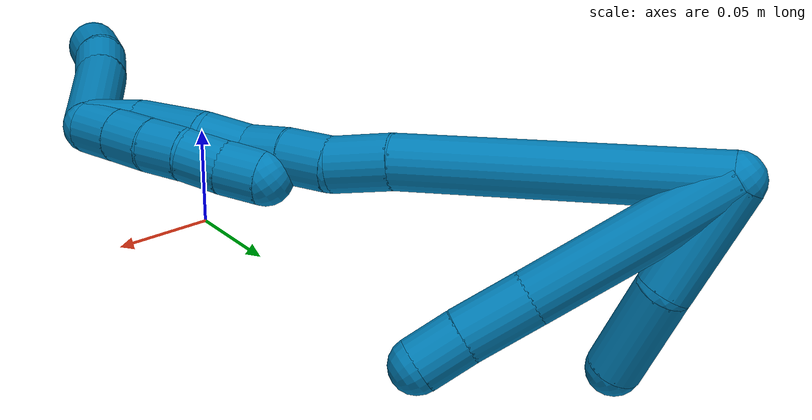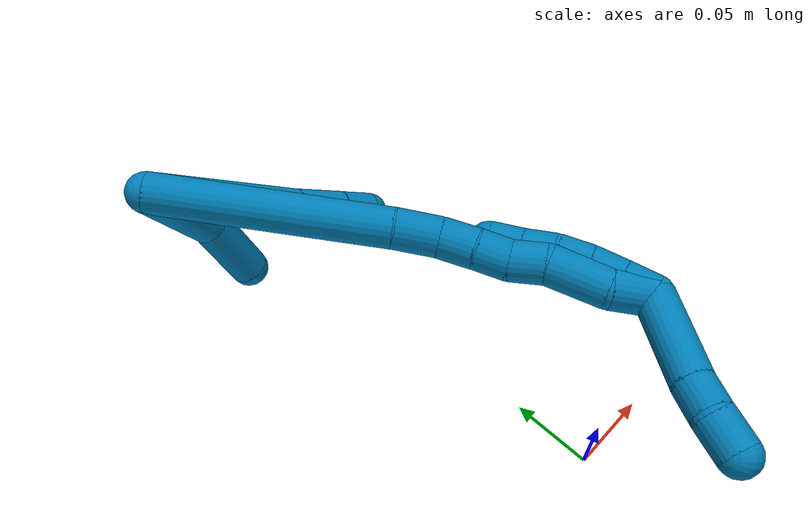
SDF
<sdf version="1.7">
 <world name="default">
  <model name="9">
   <static>0</static>
   <link name="9">
    <collision name="collision-cylinder-e_1_2_8">
     <pose>-0.000289 -0.00567 -0.047494 3.02277 -0.006038 -0.101419</pose>
     <geometry><cylinder><radius>0.0125</radius><length>0.095664</length></cylinder></geometry>
     <surface>
      <friction><ode><mu>1.16</mu><mu2>1.16</mu2><slip1>0</slip1><slip2>0</slip2></ode></friction>
      <contact><ode><kp>1e+06</kp><kd>1</kd><max_vel>0</max_vel><min_depth>0.001</min_depth></ode></contact>
     </surface>
    </collision>
    <visual name="visual-cylinder-e_1_2_8">
     <pose>-0.000289 -0.00567 -0.047494 3.02277 -0.006038 -0.101419</pose>
     <geometry><cylinder><radius>0.0125</radius><length>0.095664</length></cylinder></geometry>
     <material><ambient>0 0.490196 0.709804 1</ambient></material>
    </visual>
    <collision name="collision-cylinder-e_2_8_9">
     <pose>0.000106 -0.012863 -0.110979 3.04661 0.042501 0.84104</pose>
     <geometry><cylinder><radius>0.0125</radius><length>0.032155</length></cylinder></geometry>
     <surface>
      <friction><ode><mu>1.16</mu><mu2>1.16</mu2><slip1>0</slip1><slip2>0</slip2></ode></friction>
      <contact><ode><kp>1e+06</kp><kd>1</kd><max_vel>0</max_vel><min_depth>0.001</min_depth></ode></contact>
     </surface>
    </collision>
    <visual name="visual-cylinder-e_2_8_9">
     <pose>0.000106 -0.012863 -0.110979 3.04661 0.042501 0.84104</pose>
     <geometry><cylinder><radius>0.0125</radius><length>0.032155</length></cylinder></geometry>
     <material><ambient>0 0.490196 0.709804 1</ambient></material>
    </visual>
    <collision name="collision-cylinder-e_3_9_6">
     <pose>0.001056 -0.014907 -0.138044 3.09463 0.024147 0.949707</pose>
     <geometry><cylinder><radius>0.0125</radius><length>0.02218</length></cylinder></geometry>
     <surface>
      <friction><ode><mu>1.16</mu><mu2>1.16</mu2><slip1>0</slip1><slip2>0</slip2></ode></friction>
      <contact><ode><kp>1e+06</kp><kd>1</kd><max_vel>0</max_vel><min_depth>0.001</min_depth></ode></contact>
     </surface>
    </collision>
    <visual name="visual-cylinder-e_3_9_6">
     <pose>0.001056 -0.014907 -0.138044 3.09463 0.024147 0.949707</pose>
     <geometry><cylinder><radius>0.0125</radius><length>0.02218</length></cylinder></geometry>
     <material><ambient>0 0.490196 0.709804 1</ambient></material>
    </visual>
    <collision name="collision-cylinder-e_1_2_10">
     <pose>-0.011218 0.00474 -0.024401 -2.94974 -0.423937 2.30066</pose>
     <geometry><cylinder><radius>0.0125</radius><length>0.054542</length></cylinder></geometry>
     <surface>
      <friction><ode><mu>1.16</mu><mu2>1.16</mu2><slip1>0</slip1><slip2>0</slip2></ode></friction>
      <contact><ode><kp>1e+06</kp><kd>1</kd><max_vel>0</max_vel><min_depth>0.001</min_depth></ode></contact>
     </surface>
    </collision>
    <visual name="visual-cylinder-e_1_2_10">
     <pose>-0.011218 0.00474 -0.024401 -2.94974 -0.423937 2.30066</pose>
     <geometry><cylinder><radius>0.0125</radius><length>0.054542</length></cylinder></geometry>
     <material><ambient>0 0.490196 0.709804 1</ambient></material>
    </visual>
    <collision name="collision-cylinder-e_2_10_5">
     <pose>-0.037095 0.0101 -0.066161 -3.10588 -0.700934 3.04396</pose>
     <geometry><cylinder><radius>0.0125</radius><length>0.045458</length></cylinder></geometry>
     <surface>
      <friction><ode><mu>1.16</mu><mu2>1.16</mu2><slip1>0</slip1><slip2>0</slip2></ode></friction>
      <contact><ode><kp>1e+06</kp><kd>1</kd><max_vel>0</max_vel><min_depth>0.001</min_depth></ode></contact>
     </surface>
    </collision>
    <visual name="visual-cylinder-e_2_10_5">
     <pose>-0.037095 0.0101 -0.066161 -3.10588 -0.700934 3.04396</pose>
     <geometry><cylinder><radius>0.0125</radius><length>0.045458</length></cylinder></geometry>
     <material><ambient>0 0.490196 0.709804 1</ambient></material>
    </visual>
    <collision name="collision-cylinder-e_1_2_11">
     <pose>0.009264 -0.0467 -0.054379 2.43202 0.128533 0.343997</pose>
     <geometry><cylinder><radius>0.0125</radius><length>0.144552</length></cylinder></geometry>
     <surface>
      <friction><ode><mu>1.16</mu><mu2>1.16</mu2><slip1>0</slip1><slip2>0</slip2></ode></friction>
      <contact><ode><kp>1e+06</kp><kd>1</kd><max_vel>0</max_vel><min_depth>0.001</min_depth></ode></contact>
     </surface>
    </collision>
    <visual name="visual-cylinder-e_1_2_11">
     <pose>0.009264 -0.0467 -0.054379 2.43202 0.128533 0.343997</pose>
     <geometry><cylinder><radius>0.0125</radius><length>0.144552</length></cylinder></geometry>
     <material><ambient>0 0.490196 0.709804 1</ambient></material>
    </visual>
    <collision name="collision-cylinder-e_2_11_12">
     <pose>0.019298 -0.10169 -0.120006 2.50652 0.054987 0.166963</pose>
     <geometry><cylinder><radius>0.0125</radius><length>0.027988</length></cylinder></geometry>
     <surface>
      <friction><ode><mu>1.16</mu><mu2>1.16</mu2><slip1>0</slip1><slip2>0</slip2></ode></friction>
      <contact><ode><kp>1e+06</kp><kd>1</kd><max_vel>0</max_vel><min_depth>0.001</min_depth></ode></contact>
     </surface>
    </collision>
    <visual name="visual-cylinder-e_2_11_12">
     <pose>0.019298 -0.10169 -0.120006 2.50652 0.054987 0.166963</pose>
     <geometry><cylinder><radius>0.0125</radius><length>0.027988</length></cylinder></geometry>
     <material><ambient>0 0.490196 0.709804 1</ambient></material>
    </visual>
    <collision name="collision-cylinder-e_3_12_13">
     <pose>0.020229 -0.118799 -0.138113 2.23167 0.014514 0.029667</pose>
     <geometry><cylinder><radius>0.0125</radius><length>0.022347</length></cylinder></geometry>
     <surface>
      <friction><ode><mu>1.16</mu><mu2>1.16</mu2><slip1>0</slip1><slip2>0</slip2></ode></friction>
      <contact><ode><kp>1e+06</kp><kd>1</kd><max_vel>0</max_vel><min_depth>0.001</min_depth></ode></contact>
     </surface>
    </collision>
    <visual name="visual-cylinder-e_3_12_13">
     <pose>0.020229 -0.118799 -0.138113 2.23167 0.014514 0.029667</pose>
     <geometry><cylinder><radius>0.0125</radius><length>0.022347</length></cylinder></geometry>
     <material><ambient>0 0.490196 0.709804 1</ambient></material>
    </visual>
    <collision name="collision-cylinder-e_4_13_14">
     <pose>0.019977 -0.135048 -0.151888 2.32053 -0.04075 -0.093565</pose>
     <geometry><cylinder><radius>0.0125</radius><length>0.020319</length></cylinder></geometry>
     <surface>
      <friction><ode><mu>1.16</mu><mu2>1.16</mu2><slip1>0</slip1><slip2>0</slip2></ode></friction>
      <contact><ode><kp>1e+06</kp><kd>1</kd><max_vel>0</max_vel><min_depth>0.001</min_depth></ode></contact>
     </surface>
    </collision>
    <visual name="visual-cylinder-e_4_13_14">
     <pose>0.019977 -0.135048 -0.151888 2.32053 -0.04075 -0.093565</pose>
     <geometry><cylinder><radius>0.0125</radius><length>0.020319</length></cylinder></geometry>
     <material><ambient>0 0.490196 0.709804 1</ambient></material>
    </visual>
    <collision name="collision-cylinder-e_5_14_15">
     <pose>0.022117 -0.150969 -0.165421 2.2327 0.232939 0.470113</pose>
     <geometry><cylinder><radius>0.0125</radius><length>0.022126</length></cylinder></geometry>
     <surface>
      <friction><ode><mu>1.16</mu><mu2>1.16</mu2><slip1>0</slip1><slip2>0</slip2></ode></friction>
      <contact><ode><kp>1e+06</kp><kd>1</kd><max_vel>0</max_vel><min_depth>0.001</min_depth></ode></contact>
     </surface>
    </collision>
    <visual name="visual-cylinder-e_5_14_15">
     <pose>0.022117 -0.150969 -0.165421 2.2327 0.232939 0.470113</pose>
     <geometry><cylinder><radius>0.0125</radius><length>0.022126</length></cylinder></geometry>
     <material><ambient>0 0.490196 0.709804 1</ambient></material>
    </visual>
    <collision name="collision-cylinder-e_6_15_16">
     <pose>0.023579 -0.174107 -0.183059 2.21589 -0.059492 -0.119116</pose>
     <geometry><cylinder><radius>0.0125</radius><length>0.036727</length></cylinder></geometry>
     <surface>
      <friction><ode><mu>1.16</mu><mu2>1.16</mu2><slip1>0</slip1><slip2>0</slip2></ode></friction>
      <contact><ode><kp>1e+06</kp><kd>1</kd><max_vel>0</max_vel><min_depth>0.001</min_depth></ode></contact>
     </surface>
    </collision>
    <visual name="visual-cylinder-e_6_15_16">
     <pose>0.023579 -0.174107 -0.183059 2.21589 -0.059492 -0.119116</pose>
     <geometry><cylinder><radius>0.0125</radius><length>0.036727</length></cylinder></geometry>
     <material><ambient>0 0.490196 0.709804 1</ambient></material>
    </visual>
    <collision name="collision-cylinder-e_7_16_1">
     <pose>0.023892 -0.19691 -0.204068 2.4568 0.108526 0.30245</pose>
     <geometry><cylinder><radius>0.0125</radius><length>0.025941</length></cylinder></geometry>
     <surface>
      <friction><ode><mu>1.16</mu><mu2>1.16</mu2><slip1>0</slip1><slip2>0</slip2></ode></friction>
      <contact><ode><kp>1e+06</kp><kd>1</kd><max_vel>0</max_vel><min_depth>0.001</min_depth></ode></contact>
     </surface>
    </collision>
    <visual name="visual-cylinder-e_7_16_1">
     <pose>0.023892 -0.19691 -0.204068 2.4568 0.108526 0.30245</pose>
     <geometry><cylinder><radius>0.0125</radius><length>0.025941</length></cylinder></geometry>
     <material><ambient>0 0.490196 0.709804 1</ambient></material>
    </visual>
    <collision name="collision-cylinder-e_1_1_17">
     <pose>0.011007 -0.228651 -0.208584 1.34284 -0.533192 -0.427364</pose>
     <geometry><cylinder><radius>0.0125</radius><length>0.056229</length></cylinder></geometry>
     <surface>
      <friction><ode><mu>1.16</mu><mu2>1.16</mu2><slip1>0</slip1><slip2>0</slip2></ode></friction>
      <contact><ode><kp>1e+06</kp><kd>1</kd><max_vel>0</max_vel><min_depth>0.001</min_depth></ode></contact>
     </surface>
    </collision>
    <visual name="visual-cylinder-e_1_1_17">
     <pose>0.011007 -0.228651 -0.208584 1.34284 -0.533192 -0.427364</pose>
     <geometry><cylinder><radius>0.0125</radius><length>0.056229</length></cylinder></geometry>
     <material><ambient>0 0.490196 0.709804 1</ambient></material>
    </visual>
    <collision name="collision-cylinder-e_2_17_18">
     <pose>-0.007551 -0.261436 -0.201478 1.39498 -0.42852 -0.360736</pose>
     <geometry><cylinder><radius>0.0125</radius><length>0.020543</length></cylinder></geometry>
     <surface>
      <friction><ode><mu>1.16</mu><mu2>1.16</mu2><slip1>0</slip1><slip2>0</slip2></ode></friction>
      <contact><ode><kp>1e+06</kp><kd>1</kd><max_vel>0</max_vel><min_depth>0.001</min_depth></ode></contact>
     </surface>
    </collision>
    <visual name="visual-cylinder-e_2_17_18">
     <pose>-0.007551 -0.261436 -0.201478 1.39498 -0.42852 -0.360736</pose>
     <geometry><cylinder><radius>0.0125</radius><length>0.020543</length></cylinder></geometry>
     <material><ambient>0 0.490196 0.709804 1</ambient></material>
    </visual>
    <collision name="collision-cylinder-e_3_18_4">
     <pose>-0.017455 -0.280752 -0.200719 1.65708 -0.506582 -0.550111</pose>
     <geometry><cylinder><radius>0.0125</radius><length>0.023228</length></cylinder></geometry>
     <surface>
      <friction><ode><mu>1.16</mu><mu2>1.16</mu2><slip1>0</slip1><slip2>0</slip2></ode></friction>
      <contact><ode><kp>1e+06</kp><kd>1</kd><max_vel>0</max_vel><min_depth>0.001</min_depth></ode></contact>
     </surface>
    </collision>
    <visual name="visual-cylinder-e_3_18_4">
     <pose>-0.017455 -0.280752 -0.200719 1.65708 -0.506582 -0.550111</pose>
     <geometry><cylinder><radius>0.0125</radius><length>0.023228</length></cylinder></geometry>
     <material><ambient>0 0.490196 0.709804 1</ambient></material>
    </visual>
    <collision name="collision-cylinder-e_1_1_19">
     <pose>0.026293 -0.196564 -0.208886 -1.02452 0.099771 -0.056135</pose>
     <geometry><cylinder><radius>0.0125</radius><length>0.02</length></cylinder></geometry>
     <surface>
      <friction><ode><mu>1.16</mu><mu2>1.16</mu2><slip1>0</slip1><slip2>0</slip2></ode></friction>
      <contact><ode><kp>1e+06</kp><kd>1</kd><max_vel>0</max_vel><min_depth>0.001</min_depth></ode></contact>
     </surface>
    </collision>
    <visual name="visual-cylinder-e_1_1_19">
     <pose>0.026293 -0.196564 -0.208886 -1.02452 0.099771 -0.056135</pose>
     <geometry><cylinder><radius>0.0125</radius><length>0.02</length></cylinder></geometry>
     <material><ambient>0 0.490196 0.709804 1</ambient></material>
    </visual>
    <collision name="collision-cylinder-e_2_19_20">
     <pose>0.028141 -0.179542 -0.19855 -1.0256 0.085294 -0.048044</pose>
     <geometry><cylinder><radius>0.0125</radius><length>0.02</length></cylinder></geometry>
     <surface>
      <friction><ode><mu>1.16</mu><mu2>1.16</mu2><slip1>0</slip1><slip2>0</slip2></ode></friction>
      <contact><ode><kp>1e+06</kp><kd>1</kd><max_vel>0</max_vel><min_depth>0.001</min_depth></ode></contact>
     </surface>
    </collision>
    <visual name="visual-cylinder-e_2_19_20">
     <pose>0.028141 -0.179542 -0.19855 -1.0256 0.085294 -0.048044</pose>
     <geometry><cylinder><radius>0.0125</radius><length>0.02</length></cylinder></geometry>
     <material><ambient>0 0.490196 0.709804 1</ambient></material>
    </visual>
    <collision name="collision-cylinder-e_3_20_21">
     <pose>0.028968 -0.162893 -0.187561 -0.949396 -0.002444 0.001256</pose>
     <geometry><cylinder><radius>0.0125</radius><length>0.02</length></cylinder></geometry>
     <surface>
      <friction><ode><mu>1.16</mu><mu2>1.16</mu2><slip1>0</slip1><slip2>0</slip2></ode></friction>
      <contact><ode><kp>1e+06</kp><kd>1</kd><max_vel>0</max_vel><min_depth>0.001</min_depth></ode></contact>
     </surface>
    </collision>
    <visual name="visual-cylinder-e_3_20_21">
     <pose>0.028968 -0.162893 -0.187561 -0.949396 -0.002444 0.001256</pose>
     <geometry><cylinder><radius>0.0125</radius><length>0.02</length></cylinder></geometry>
     <material><ambient>0 0.490196 0.709804 1</ambient></material>
    </visual>
    <collision name="collision-cylinder-e_4_21_22">
     <pose>0.027131 -0.146714 -0.176087 -0.958497 -0.182338 0.094945</pose>
     <geometry><cylinder><radius>0.0125</radius><length>0.02</length></cylinder></geometry>
     <surface>
      <friction><ode><mu>1.16</mu><mu2>1.16</mu2><slip1>0</slip1><slip2>0</slip2></ode></friction>
      <contact><ode><kp>1e+06</kp><kd>1</kd><max_vel>0</max_vel><min_depth>0.001</min_depth></ode></contact>
     </surface>
    </collision>
    <visual name="visual-cylinder-e_4_21_22">
     <pose>0.027131 -0.146714 -0.176087 -0.958497 -0.182338 0.094945</pose>
     <geometry><cylinder><radius>0.0125</radius><length>0.02</length></cylinder></geometry>
     <material><ambient>0 0.490196 0.709804 1</ambient></material>
    </visual>
    <collision name="collision-cylinder-e_5_22_3">
     <pose>0.024261 -0.130792 -0.164362 -0.913926 -0.10583 0.05207</pose>
     <geometry><cylinder><radius>0.0125</radius><length>0.02</length></cylinder></geometry>
     <surface>
      <friction><ode><mu>1.16</mu><mu2>1.16</mu2><slip1>0</slip1><slip2>0</slip2></ode></friction>
      <contact><ode><kp>1e+06</kp><kd>1</kd><max_vel>0</max_vel><min_depth>0.001</min_depth></ode></contact>
     </surface>
    </collision>
    <visual name="visual-cylinder-e_5_22_3">
     <pose>0.024261 -0.130792 -0.164362 -0.913926 -0.10583 0.05207</pose>
     <geometry><cylinder><radius>0.0125</radius><length>0.02</length></cylinder></geometry>
     <material><ambient>0 0.490196 0.709804 1</ambient></material>
    </visual>
    <collision name="collision-sphere-3">
     <pose>0.023205 -0.122917 -0.15829 0 -0 0</pose>
     <geometry><sphere><radius>0.0125</radius></sphere></geometry>
     <surface>
      <friction><ode><mu>1.16</mu><mu2>1.16</mu2><slip1>0</slip1><slip2>0</slip2></ode></friction>
      <contact><ode><kp>1e+06</kp><kd>1</kd><max_vel>0</max_vel><min_depth>0.001</min_depth></ode></contact>
     </surface>
    </collision>
    <visual name="visual-sphere-3">
     <pose>0.023205 -0.122917 -0.15829 0 -0 0</pose>
     <geometry><sphere><radius>0.0125</radius></sphere></geometry>
     <material><ambient>0 0.490196 0.709804 1</ambient></material>
    </visual>
    <collision name="collision-sphere-22">
     <pose>0.025317 -0.138667 -0.170435 0 -0 0</pose>
     <geometry><sphere><radius>0.0125</radius></sphere></geometry>
     <surface>
      <friction><ode><mu>1.16</mu><mu2>1.16</mu2><slip1>0</slip1><slip2>0</slip2></ode></friction>
      <contact><ode><kp>1e+06</kp><kd>1</kd><max_vel>0</max_vel><min_depth>0.001</min_depth></ode></contact>
     </surface>
    </collision>
    <visual name="visual-sphere-22">
     <pose>0.025317 -0.138667 -0.170435 0 -0 0</pose>
     <geometry><sphere><radius>0.0125</radius></sphere></geometry>
     <material><ambient>0 0.490196 0.709804 1</ambient></material>
    </visual>
    <collision name="collision-sphere-21">
     <pose>0.028944 -0.154762 -0.181739 0 -0 0</pose>
     <geometry><sphere><radius>0.0125</radius></sphere></geometry>
     <surface>
      <friction><ode><mu>1.16</mu><mu2>1.16</mu2><slip1>0</slip1><slip2>0</slip2></ode></friction>
      <contact><ode><kp>1e+06</kp><kd>1</kd><max_vel>0</max_vel><min_depth>0.001</min_depth></ode></contact>
     </surface>
    </collision>
    <visual name="visual-sphere-21">
     <pose>0.028944 -0.154762 -0.181739 0 -0 0</pose>
     <geometry><sphere><radius>0.0125</radius></sphere></geometry>
     <material><ambient>0 0.490196 0.709804 1</ambient></material>
    </visual>
    <collision name="collision-sphere-20">
     <pose>0.028993 -0.171023 -0.193382 0 -0 0</pose>
     <geometry><sphere><radius>0.0125</radius></sphere></geometry>
     <surface>
      <friction><ode><mu>1.16</mu><mu2>1.16</mu2><slip1>0</slip1><slip2>0</slip2></ode></friction>
      <contact><ode><kp>1e+06</kp><kd>1</kd><max_vel>0</max_vel><min_depth>0.001</min_depth></ode></contact>
     </surface>
    </collision>
    <visual name="visual-sphere-20">
     <pose>0.028993 -0.171023 -0.193382 0 -0 0</pose>
     <geometry><sphere><radius>0.0125</radius></sphere></geometry>
     <material><ambient>0 0.490196 0.709804 1</ambient></material>
    </visual>
    <collision name="collision-sphere-19">
     <pose>0.027289 -0.188062 -0.203717 0 -0 0</pose>
     <geometry><sphere><radius>0.0125</radius></sphere></geometry>
     <surface>
      <friction><ode><mu>1.16</mu><mu2>1.16</mu2><slip1>0</slip1><slip2>0</slip2></ode></friction>
      <contact><ode><kp>1e+06</kp><kd>1</kd><max_vel>0</max_vel><min_depth>0.001</min_depth></ode></contact>
     </surface>
    </collision>
    <visual name="visual-sphere-19">
     <pose>0.027289 -0.188062 -0.203717 0 -0 0</pose>
     <geometry><sphere><radius>0.0125</radius></sphere></geometry>
     <material><ambient>0 0.490196 0.709804 1</ambient></material>
    </visual>
    <collision name="collision-sphere-5">
     <pose>-0.051753 0.01072 -0.08352 0 -0 0</pose>
     <geometry><sphere><radius>0.0125</radius></sphere></geometry>
     <surface>
      <friction><ode><mu>1.16</mu><mu2>1.16</mu2><slip1>0</slip1><slip2>0</slip2></ode></friction>
      <contact><ode><kp>1e+06</kp><kd>1</kd><max_vel>0</max_vel><min_depth>0.001</min_depth></ode></contact>
     </surface>
    </collision>
    <visual name="visual-sphere-5">
     <pose>-0.051753 0.01072 -0.08352 0 -0 0</pose>
     <geometry><sphere><radius>0.0125</radius></sphere></geometry>
     <material><ambient>0 0.490196 0.709804 1</ambient></material>
    </visual>
    <collision name="collision-sphere-10">
     <pose>-0.022436 0.00948 -0.048802 0 -0 0</pose>
     <geometry><sphere><radius>0.0125</radius></sphere></geometry>
     <surface>
      <friction><ode><mu>1.16</mu><mu2>1.16</mu2><slip1>0</slip1><slip2>0</slip2></ode></friction>
      <contact><ode><kp>1e+06</kp><kd>1</kd><max_vel>0</max_vel><min_depth>0.001</min_depth></ode></contact>
     </surface>
    </collision>
    <visual name="visual-sphere-10">
     <pose>-0.022436 0.00948 -0.048802 0 -0 0</pose>
     <geometry><sphere><radius>0.0125</radius></sphere></geometry>
     <material><ambient>0 0.490196 0.709804 1</ambient></material>
    </visual>
    <collision name="collision-sphere-6">
     <pose>0.001324 -0.015428 -0.149119 0 -0 0</pose>
     <geometry><sphere><radius>0.0125</radius></sphere></geometry>
     <surface>
      <friction><ode><mu>1.16</mu><mu2>1.16</mu2><slip1>0</slip1><slip2>0</slip2></ode></friction>
      <contact><ode><kp>1e+06</kp><kd>1</kd><max_vel>0</max_vel><min_depth>0.001</min_depth></ode></contact>
     </surface>
    </collision>
    <visual name="visual-sphere-6">
     <pose>0.001324 -0.015428 -0.149119 0 -0 0</pose>
     <geometry><sphere><radius>0.0125</radius></sphere></geometry>
     <material><ambient>0 0.490196 0.709804 1</ambient></material>
    </visual>
    <collision name="collision-sphere-9">
     <pose>0.000789 -0.014387 -0.12697 0 -0 0</pose>
     <geometry><sphere><radius>0.0125</radius></sphere></geometry>
     <surface>
      <friction><ode><mu>1.16</mu><mu2>1.16</mu2><slip1>0</slip1><slip2>0</slip2></ode></friction>
      <contact><ode><kp>1e+06</kp><kd>1</kd><max_vel>0</max_vel><min_depth>0.001</min_depth></ode></contact>
     </surface>
    </collision>
    <visual name="visual-sphere-9">
     <pose>0.000789 -0.014387 -0.12697 0 -0 0</pose>
     <geometry><sphere><radius>0.0125</radius></sphere></geometry>
     <material><ambient>0 0.490196 0.709804 1</ambient></material>
    </visual>
    <collision name="collision-sphere-2">
     <geometry><sphere><radius>0.0125</radius></sphere></geometry>
     <surface>
      <friction><ode><mu>1.16</mu><mu2>1.16</mu2><slip1>0</slip1><slip2>0</slip2></ode></friction>
      <contact><ode><kp>1e+06</kp><kd>1</kd><max_vel>0</max_vel><min_depth>0.001</min_depth></ode></contact>
     </surface>
    </collision>
    <visual name="visual-sphere-2">
     <geometry><sphere><radius>0.0125</radius></sphere></geometry>
     <material><ambient>0 0.490196 0.709804 1</ambient></material>
    </visual>
    <collision name="collision-sphere-8">
     <pose>-0.000578 -0.01134 -0.094988 0 -0 0</pose>
     <geometry><sphere><radius>0.0125</radius></sphere></geometry>
     <surface>
      <friction><ode><mu>1.16</mu><mu2>1.16</mu2><slip1>0</slip1><slip2>0</slip2></ode></friction>
      <contact><ode><kp>1e+06</kp><kd>1</kd><max_vel>0</max_vel><min_depth>0.001</min_depth></ode></contact>
     </surface>
    </collision>
    <visual name="visual-sphere-8">
     <pose>-0.000578 -0.01134 -0.094988 0 -0 0</pose>
     <geometry><sphere><radius>0.0125</radius></sphere></geometry>
     <material><ambient>0 0.490196 0.709804 1</ambient></material>
    </visual>
    <collision name="collision-sphere-11">
     <pose>0.018529 -0.0934 -0.108758 0 -0 0</pose>
     <geometry><sphere><radius>0.0125</radius></sphere></geometry>
     <surface>
      <friction><ode><mu>1.16</mu><mu2>1.16</mu2><slip1>0</slip1><slip2>0</slip2></ode></friction>
      <contact><ode><kp>1e+06</kp><kd>1</kd><max_vel>0</max_vel><min_depth>0.001</min_depth></ode></contact>
     </surface>
    </collision>
    <visual name="visual-sphere-11">
     <pose>0.018529 -0.0934 -0.108758 0 -0 0</pose>
     <geometry><sphere><radius>0.0125</radius></sphere></geometry>
     <material><ambient>0 0.490196 0.709804 1</ambient></material>
    </visual>
    <collision name="collision-sphere-12">
     <pose>0.020067 -0.109979 -0.131255 0 -0 0</pose>
     <geometry><sphere><radius>0.0125</radius></sphere></geometry>
     <surface>
      <friction><ode><mu>1.16</mu><mu2>1.16</mu2><slip1>0</slip1><slip2>0</slip2></ode></friction>
      <contact><ode><kp>1e+06</kp><kd>1</kd><max_vel>0</max_vel><min_depth>0.001</min_depth></ode></contact>
     </surface>
    </collision>
    <visual name="visual-sphere-12">
     <pose>0.020067 -0.109979 -0.131255 0 -0 0</pose>
     <geometry><sphere><radius>0.0125</radius></sphere></geometry>
     <material><ambient>0 0.490196 0.709804 1</ambient></material>
    </visual>
    <collision name="collision-sphere-13">
     <pose>0.020391 -0.127619 -0.14497 0 -0 0</pose>
     <geometry><sphere><radius>0.0125</radius></sphere></geometry>
     <surface>
      <friction><ode><mu>1.16</mu><mu2>1.16</mu2><slip1>0</slip1><slip2>0</slip2></ode></friction>
      <contact><ode><kp>1e+06</kp><kd>1</kd><max_vel>0</max_vel><min_depth>0.001</min_depth></ode></contact>
     </surface>
    </collision>
    <visual name="visual-sphere-13">
     <pose>0.020391 -0.127619 -0.14497 0 -0 0</pose>
     <geometry><sphere><radius>0.0125</radius></sphere></geometry>
     <material><ambient>0 0.490196 0.709804 1</ambient></material>
    </visual>
    <collision name="collision-sphere-14">
     <pose>0.019563 -0.142478 -0.158805 0 -0 0</pose>
     <geometry><sphere><radius>0.0125</radius></sphere></geometry>
     <surface>
      <friction><ode><mu>1.16</mu><mu2>1.16</mu2><slip1>0</slip1><slip2>0</slip2></ode></friction>
      <contact><ode><kp>1e+06</kp><kd>1</kd><max_vel>0</max_vel><min_depth>0.001</min_depth></ode></contact>
     </surface>
    </collision>
    <visual name="visual-sphere-14">
     <pose>0.019563 -0.142478 -0.158805 0 -0 0</pose>
     <geometry><sphere><radius>0.0125</radius></sphere></geometry>
     <material><ambient>0 0.490196 0.709804 1</ambient></material>
    </visual>
    <collision name="collision-sphere-15">
     <pose>0.024671 -0.15946 -0.172037 0 -0 0</pose>
     <geometry><sphere><radius>0.0125</radius></sphere></geometry>
     <surface>
      <friction><ode><mu>1.16</mu><mu2>1.16</mu2><slip1>0</slip1><slip2>0</slip2></ode></friction>
      <contact><ode><kp>1e+06</kp><kd>1</kd><max_vel>0</max_vel><min_depth>0.001</min_depth></ode></contact>
     </surface>
    </collision>
    <visual name="visual-sphere-15">
     <pose>0.024671 -0.15946 -0.172037 0 -0 0</pose>
     <geometry><sphere><radius>0.0125</radius></sphere></geometry>
     <material><ambient>0 0.490196 0.709804 1</ambient></material>
    </visual>
    <collision name="collision-sphere-16">
     <pose>0.022487 -0.188755 -0.194081 0 -0 0</pose>
     <geometry><sphere><radius>0.0125</radius></sphere></geometry>
     <surface>
      <friction><ode><mu>1.16</mu><mu2>1.16</mu2><slip1>0</slip1><slip2>0</slip2></ode></friction>
      <contact><ode><kp>1e+06</kp><kd>1</kd><max_vel>0</max_vel><min_depth>0.001</min_depth></ode></contact>
     </surface>
    </collision>
    <visual name="visual-sphere-16">
     <pose>0.022487 -0.188755 -0.194081 0 -0 0</pose>
     <geometry><sphere><radius>0.0125</radius></sphere></geometry>
     <material><ambient>0 0.490196 0.709804 1</ambient></material>
    </visual>
    <collision name="collision-sphere-1">
     <pose>0.025297 -0.205066 -0.214055 0 -0 0</pose>
     <geometry><sphere><radius>0.0125</radius></sphere></geometry>
     <surface>
      <friction><ode><mu>1.16</mu><mu2>1.16</mu2><slip1>0</slip1><slip2>0</slip2></ode></friction>
      <contact><ode><kp>1e+06</kp><kd>1</kd><max_vel>0</max_vel><min_depth>0.001</min_depth></ode></contact>
     </surface>
    </collision>
    <visual name="visual-sphere-1">
     <pose>0.025297 -0.205066 -0.214055 0 -0 0</pose>
     <geometry><sphere><radius>0.0125</radius></sphere></geometry>
     <material><ambient>0 0.490196 0.709804 1</ambient></material>
    </visual>
    <collision name="collision-sphere-18">
     <pose>-0.01182 -0.270635 -0.199844 0 -0 0</pose>
     <geometry><sphere><radius>0.0125</radius></sphere></geometry>
     <surface>
      <friction><ode><mu>1.16</mu><mu2>1.16</mu2><slip1>0</slip1><slip2>0</slip2></ode></friction>
      <contact><ode><kp>1e+06</kp><kd>1</kd><max_vel>0</max_vel><min_depth>0.001</min_depth></ode></contact>
     </surface>
    </collision>
    <visual name="visual-sphere-18">
     <pose>-0.01182 -0.270635 -0.199844 0 -0 0</pose>
     <geometry><sphere><radius>0.0125</radius></sphere></geometry>
     <material><ambient>0 0.490196 0.709804 1</ambient></material>
    </visual>
    <collision name="collision-sphere-17">
     <pose>-0.003283 -0.252237 -0.203112 0 -0 0</pose>
     <geometry><sphere><radius>0.0125</radius></sphere></geometry>
     <surface>
      <friction><ode><mu>1.16</mu><mu2>1.16</mu2><slip1>0</slip1><slip2>0</slip2></ode></friction>
      <contact><ode><kp>1e+06</kp><kd>1</kd><max_vel>0</max_vel><min_depth>0.001</min_depth></ode></contact>
     </surface>
    </collision>
    <visual name="visual-sphere-17">
     <pose>-0.003283 -0.252237 -0.203112 0 -0 0</pose>
     <geometry><sphere><radius>0.0125</radius></sphere></geometry>
     <material><ambient>0 0.490196 0.709804 1</ambient></material>
    </visual>
    <collision name="collision-sphere-4">
     <pose>-0.02309 -0.29087 -0.201594 0 -0 0</pose>
     <geometry><sphere><radius>0.0125</radius></sphere></geometry>
     <surface>
      <friction><ode><mu>1.16</mu><mu2>1.16</mu2><slip1>0</slip1><slip2>0</slip2></ode></friction>
      <contact><ode><kp>1e+06</kp><kd>1</kd><max_vel>0</max_vel><min_depth>0.001</min_depth></ode></contact>
     </surface>
    </collision>
    <visual name="visual-sphere-4">
     <pose>-0.02309 -0.29087 -0.201594 0 -0 0</pose>
     <geometry><sphere><radius>0.0125</radius></sphere></geometry>
     <material><ambient>0 0.490196 0.709804 1</ambient></material>
    </visual>
    <inertial>
     <pose>0.00689 -0.095315 -0.117093 0 -0 0</pose>
     <mass>0.75</mass>
     <inertia>
      <ixx>0.000424</ixx>
      <ixy>0</ixy>
      <ixz>0</ixz>
      <iyy>-0.000162</iyy>
      <iyz>0</iyz>
      <izz>0.000156</izz>
     </inertia>
    </inertial>
   </link>
   <pose>-0.084558 0.273004 0.100913 -0.59439 -0.855184 0.343148</pose>
  </model>
 </world>
</sdf>
